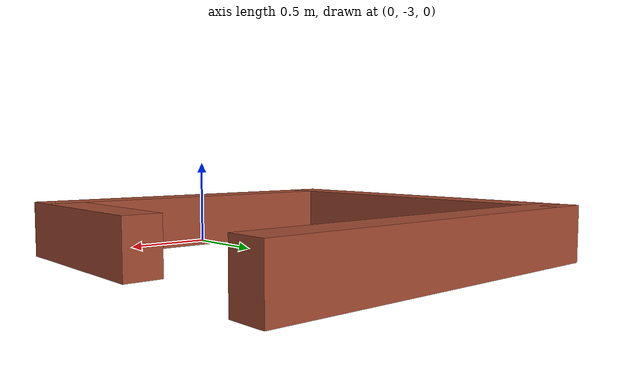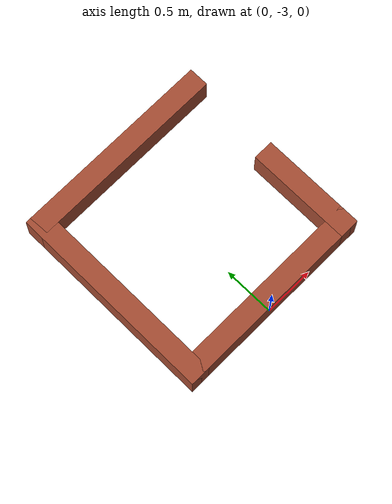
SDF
<?xml version='1.0'?>
<sdf version='1.6'>
  <model name='maze1'>
    <pose frame=''>0.035 -2.005 0 0 -0 0</pose>
    <link name='Wall_0'>
      <collision name='Wall_0_Collision'>
        <geometry>
          <box>
            <size>2.05 0.2 0.3</size>
          </box>
        </geometry>
        <pose frame=''>0 0 0.15 0 -0 0</pose>
      </collision>
      <visual name='Wall_0_Visual'>
        <pose frame=''>0 0 0.15 0 -0 0</pose>
        <geometry>
          <box>
            <size>2.05 0.2 0.3</size>
          </box>
        </geometry>
        <material>
          <script>
            <uri>file://media/materials/scripts/gazebo.material</uri>
            <name>Gazebo/Bricks</name>
          </script>
          <ambient>1 1 1 1</ambient>
        </material>
        <meta>
          <layer>0</layer>
        </meta>
      </visual>
      <pose frame=''>0 0.925 0 0 -0 3.14159</pose>
    </link>
    <link name='Wall_1'>
      <collision name='Wall_1_Collision'>
        <geometry>
          <box>
            <size>2.05 0.2 0.3</size>
          </box>
        </geometry>
        <pose frame=''>0 0 0.15 0 -0 0</pose>
      </collision>
      <visual name='Wall_1_Visual'>
        <pose frame=''>0 0 0.15 0 -0 0</pose>
        <geometry>
          <box>
            <size>2.05 0.2 0.3</size>
          </box>
        </geometry>
        <material>
          <script>
            <uri>file://media/materials/scripts/gazebo.material</uri>
            <name>Gazebo/Bricks</name>
          </script>
          <ambient>1 1 1 1</ambient>
        </material>
        <meta>
          <layer>0</layer>
        </meta>
      </visual>
      <pose frame=''>-0.925 0 0 0 -0 -1.5708</pose>
    </link>
    <link name='Wall_2'>
      <collision name='Wall_2_Collision'>
        <geometry>
          <box>
            <size>2.05 0.2 0.3</size>
          </box>
        </geometry>
        <pose frame=''>0 0 0.15 0 -0 0</pose>
      </collision>
      <visual name='Wall_2_Visual'>
        <pose frame=''>0 0 0.15 0 -0 0</pose>
        <geometry>
          <box>
            <size>2.05 0.2 0.3</size>
          </box>
        </geometry>
        <material>
          <script>
            <uri>file://media/materials/scripts/gazebo.material</uri>
            <name>Gazebo/Bricks</name>
          </script>
          <ambient>1 1 1 1</ambient>
        </material>
        <meta>
          <layer>0</layer>
        </meta>
      </visual>
      <pose frame=''>0 -0.925 0 0 -0 0</pose>
    </link>
    <link name='Wall_3'>
      <collision name='Wall_3_Collision'>
        <geometry>
          <box>
            <size>1.05 0.2 0.3</size>
          </box>
        </geometry>
        <pose frame=''>0 0 0.15 0 -0 0</pose>
      </collision>
      <visual name='Wall_3_Visual'>
        <pose frame=''>0 0 0.15 0 -0 0</pose>
        <geometry>
          <box>
            <size>1.05 0.2 0.3</size>
          </box>
        </geometry>
        <material>
          <script>
            <uri>file://media/materials/scripts/gazebo.material</uri>
            <name>Gazebo/Bricks</name>
          </script>
          <ambient>1 1 1 1</ambient>
        </material>
        <meta>
          <layer>0</layer>
        </meta>
      </visual>
      <pose frame=''>0.925 -0.5 0 0 -0 1.5708</pose>
    </link>
    <static>1</static>
  </model>
</sdf>
